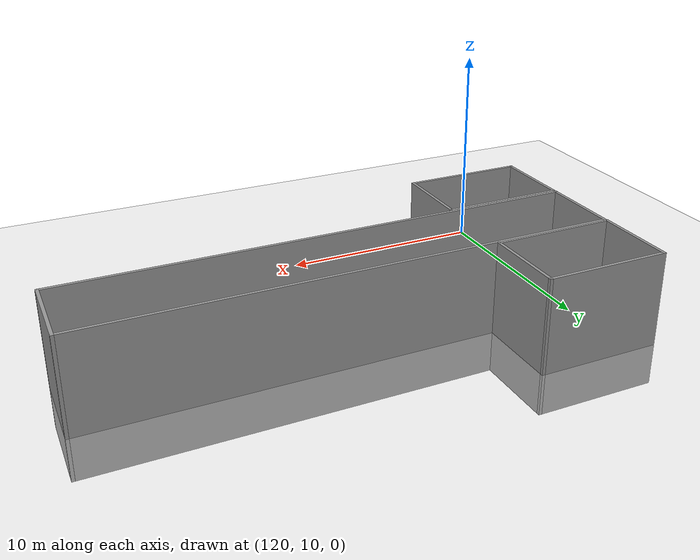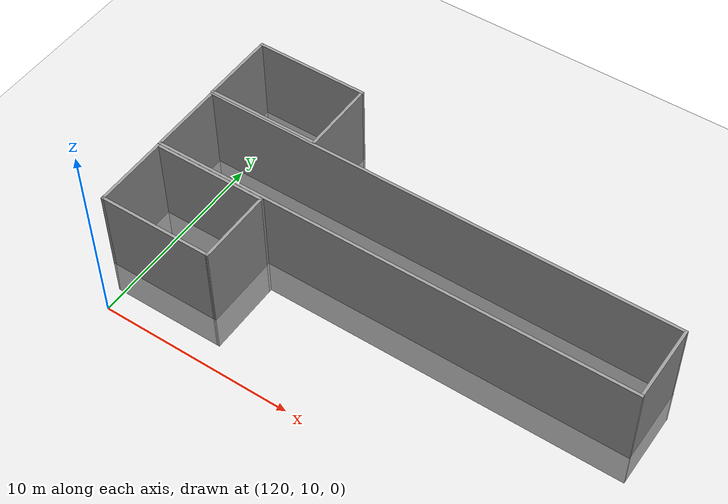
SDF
<sdf version="1.6">
 <world name="default">
  <model name="ground_plane">
   <static>1</static>
   <link name="link">
    <collision name="collision">
     <geometry><plane><normal>0 0 1</normal><size>320 320</size></plane></geometry>
     <surface>
      <contact><collide_bitmask>65535</collide_bitmask></contact>
      <friction><ode><mu>100</mu><mu2>50</mu2></ode></friction>
     </surface>
    </collision>
    <visual name="visual">
     <cast_shadows>0</cast_shadows>
     <geometry><plane><normal>0 0 1</normal><size>320 320</size></plane></geometry>
     <material>
      <script><uri>file://media/materials/scripts/gazebo.material</uri><name>Gazebo/Grey</name></script>
     </material>
    </visual>
   </link>
  </model>
  <model name="base4x25_5">
   <pose>130.945 18.217 0 0 -0 0</pose>
   <link name="Wall_11">
    <collision name="Wall_11_Collision">
     <geometry><box><size>4 0.15 6.555</size></box></geometry>
     <pose>0 0 1.25 0 -0 0</pose>
    </collision>
    <visual name="Wall_11_Visual">
     <pose>0 0 1.25 0 -0 0</pose>
     <geometry><box><size>4 0.15 6.555</size></box></geometry>
     <material>
      <script><uri>file://media/materials/scripts/gazebo.material</uri><name>Gazebo/Grey</name></script>
      <ambient>1 1 1 1</ambient>
     </material>
     <meta><layer>0</layer></meta>
    </visual>
    <pose>-12.425 0 0 0 -0 -1.5708</pose>
   </link>
   <link name="Wall_12">
    <collision name="Wall_12_Collision">
     <geometry><box><size>25 0.15 6.555</size></box></geometry>
     <pose>0 0 1.25 0 -0 0</pose>
    </collision>
    <visual name="Wall_12_Visual">
     <pose>0 0 1.25 0 -0 0</pose>
     <geometry><box><size>25 0.15 6.555</size></box></geometry>
     <material>
      <script><uri>file://media/materials/scripts/gazebo.material</uri><name>Gazebo/Grey</name></script>
      <ambient>1 1 1 1</ambient>
     </material>
     <meta><layer>0</layer></meta>
    </visual>
    <pose>0 -1.925 0 0 -0 0</pose>
   </link>
   <link name="Wall_13">
    <collision name="Wall_13_Collision">
     <geometry><box><size>4 0.15 6.555</size></box></geometry>
     <pose>0 0 1.25 0 -0 0</pose>
    </collision>
    <visual name="Wall_13_Visual">
     <pose>0 0 1.25 0 -0 0</pose>
     <geometry><box><size>4 0.15 6.555</size></box></geometry>
     <material>
      <script><uri>file://media/materials/scripts/gazebo.material</uri><name>Gazebo/Grey</name></script>
      <ambient>1 1 1 1</ambient>
     </material>
     <meta><layer>0</layer></meta>
    </visual>
    <pose>12.425 0 0 0 -0 1.5708</pose>
   </link>
   <link name="Wall_14">
    <collision name="Wall_14_Collision">
     <geometry><box><size>25 0.15 6.555</size></box></geometry>
     <pose>0 0 1.25 0 -0 0</pose>
    </collision>
    <visual name="Wall_14_Visual">
     <pose>0 0 1.25 0 -0 0</pose>
     <geometry><box><size>25 0.15 6.555</size></box></geometry>
     <material>
      <script><uri>file://media/materials/scripts/gazebo.material</uri><name>Gazebo/Grey</name></script>
      <ambient>1 1 1 1</ambient>
     </material>
     <meta><layer>0</layer></meta>
    </visual>
    <pose>0 1.925 0 0 -0 3.14159</pose>
   </link>
   <static>1</static>
  </model>
  <model name="base4x6_13_clone_11">
   <pose>121.46 14.2139 0 0 -0 0</pose>
   <link name="Wall_23">
    <collision name="Wall_23_Collision">
     <geometry><box><size>4 0.15 6.555</size></box></geometry>
     <pose>0 0 1.25 0 -0 0</pose>
    </collision>
    <visual name="Wall_23_Visual">
     <pose>0 0 1.25 0 -0 0</pose>
     <geometry><box><size>4 0.15 6.555</size></box></geometry>
     <material>
      <script><uri>file://media/materials/scripts/gazebo.material</uri><name>Gazebo/Grey</name></script>
      <ambient>1 1 1 1</ambient>
     </material>
     <meta><layer>0</layer></meta>
    </visual>
    <pose>-2.925 0 0 0 -0 -1.5708</pose>
   </link>
   <link name="Wall_24">
    <collision name="Wall_24_Collision">
     <geometry><box><size>6 0.15 6.555</size></box></geometry>
     <pose>0 0 1.25 0 -0 0</pose>
    </collision>
    <visual name="Wall_24_Visual">
     <pose>0 0 1.25 0 -0 0</pose>
     <geometry><box><size>6 0.15 6.555</size></box></geometry>
     <material>
      <script><uri>file://media/materials/scripts/gazebo.material</uri><name>Gazebo/Grey</name></script>
      <ambient>1 1 1 1</ambient>
     </material>
     <meta><layer>0</layer></meta>
    </visual>
    <pose>-0 -1.925 0 0 -0 0</pose>
   </link>
   <link name="Wall_25">
    <collision name="Wall_25_Collision">
     <geometry><box><size>4 0.15 6.555</size></box></geometry>
     <pose>0 0 1.25 0 -0 0</pose>
    </collision>
    <visual name="Wall_25_Visual">
     <pose>0 0 1.25 0 -0 0</pose>
     <geometry><box><size>4 0.15 6.555</size></box></geometry>
     <material>
      <script><uri>file://media/materials/scripts/gazebo.material</uri><name>Gazebo/Grey</name></script>
      <ambient>1 1 1 1</ambient>
     </material>
     <meta><layer>0</layer></meta>
    </visual>
    <pose>2.925 0 0 0 -0 1.5708</pose>
   </link>
   <link name="Wall_26">
    <collision name="Wall_26_Collision">
     <geometry><box><size>6 0.15 6.555</size></box></geometry>
     <pose>0 0 1.25 0 -0 0</pose>
    </collision>
    <visual name="Wall_26_Visual">
     <pose>0 0 1.25 0 -0 0</pose>
     <geometry><box><size>6 0.15 6.555</size></box></geometry>
     <material>
      <script><uri>file://media/materials/scripts/gazebo.material</uri><name>Gazebo/Grey</name></script>
      <ambient>1 1 1 1</ambient>
     </material>
     <meta><layer>0</layer></meta>
    </visual>
    <pose>-0 1.925 0 0 -0 3.14159</pose>
   </link>
   <static>1</static>
  </model>
  <model name="base4x6_13_clone_13">
   <pose>121.406 22.1836 0 0 -0 0</pose>
   <link name="Wall_23">
    <collision name="Wall_23_Collision">
     <geometry><box><size>4 0.15 6.555</size></box></geometry>
     <pose>0 0 1.25 0 -0 0</pose>
    </collision>
    <visual name="Wall_23_Visual">
     <pose>0 0 1.25 0 -0 0</pose>
     <geometry><box><size>4 0.15 6.555</size></box></geometry>
     <material>
      <script><uri>file://media/materials/scripts/gazebo.material</uri><name>Gazebo/Grey</name></script>
      <ambient>1 1 1 1</ambient>
     </material>
     <meta><layer>0</layer></meta>
    </visual>
    <pose>-2.925 0 0 0 -0 -1.5708</pose>
   </link>
   <link name="Wall_24">
    <collision name="Wall_24_Collision">
     <geometry><box><size>6 0.15 6.555</size></box></geometry>
     <pose>0 0 1.25 0 -0 0</pose>
    </collision>
    <visual name="Wall_24_Visual">
     <pose>0 0 1.25 0 -0 0</pose>
     <geometry><box><size>6 0.15 6.555</size></box></geometry>
     <material>
      <script><uri>file://media/materials/scripts/gazebo.material</uri><name>Gazebo/Grey</name></script>
      <ambient>1 1 1 1</ambient>
     </material>
     <meta><layer>0</layer></meta>
    </visual>
    <pose>-0 -1.925 0 0 -0 0</pose>
   </link>
   <link name="Wall_25">
    <collision name="Wall_25_Collision">
     <geometry><box><size>4 0.15 6.555</size></box></geometry>
     <pose>0 0 1.25 0 -0 0</pose>
    </collision>
    <visual name="Wall_25_Visual">
     <pose>0 0 1.25 0 -0 0</pose>
     <geometry><box><size>4 0.15 6.555</size></box></geometry>
     <material>
      <script><uri>file://media/materials/scripts/gazebo.material</uri><name>Gazebo/Grey</name></script>
      <ambient>1 1 1 1</ambient>
     </material>
     <meta><layer>0</layer></meta>
    </visual>
    <pose>2.925 0 0 0 -0 1.5708</pose>
   </link>
   <link name="Wall_26">
    <collision name="Wall_26_Collision">
     <geometry><box><size>6 0.15 6.555</size></box></geometry>
     <pose>0 0 1.25 0 -0 0</pose>
    </collision>
    <visual name="Wall_26_Visual">
     <pose>0 0 1.25 0 -0 0</pose>
     <geometry><box><size>6 0.15 6.555</size></box></geometry>
     <material>
      <script><uri>file://media/materials/scripts/gazebo.material</uri><name>Gazebo/Grey</name></script>
      <ambient>1 1 1 1</ambient>
     </material>
     <meta><layer>0</layer></meta>
    </visual>
    <pose>-0 1.925 0 0 -0 3.14159</pose>
   </link>
   <static>1</static>
  </model>
 </world>
</sdf>
